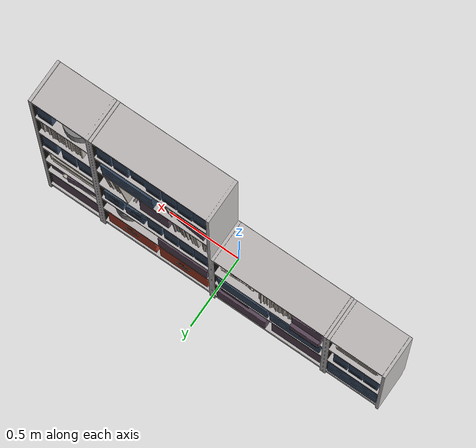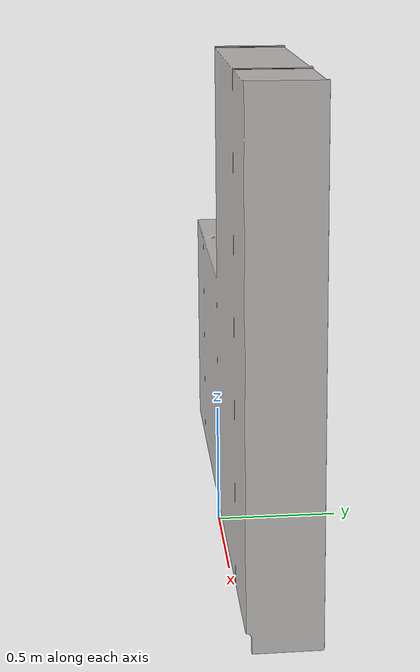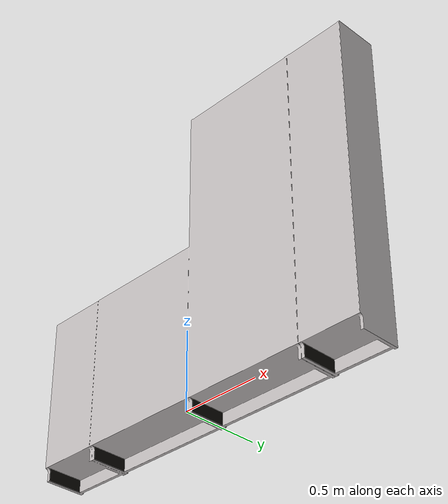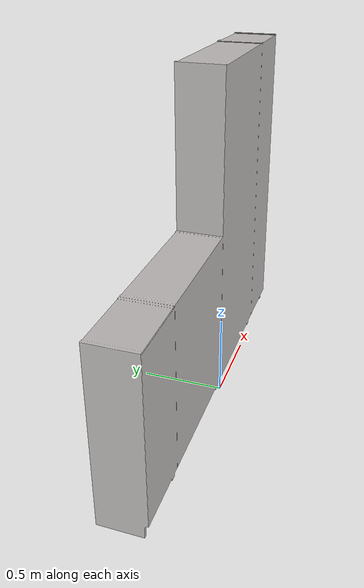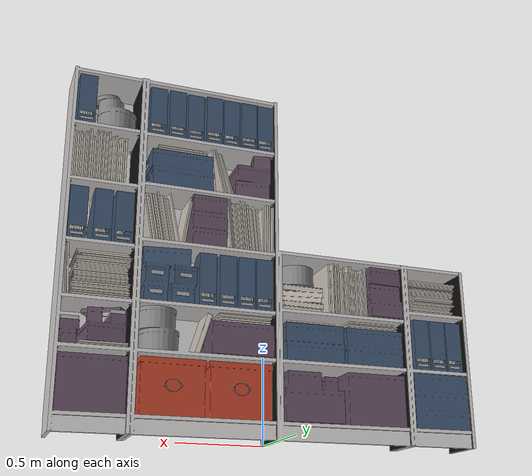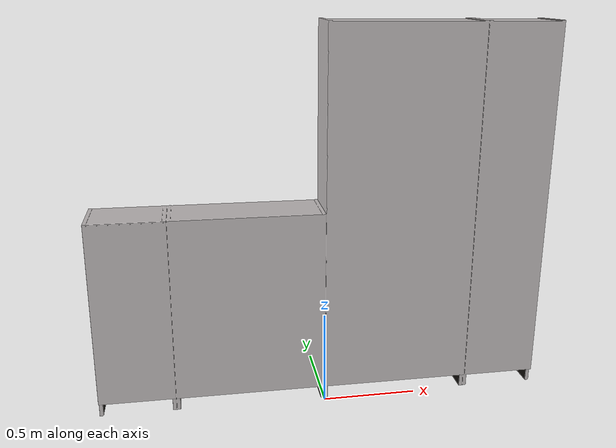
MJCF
<mujoco model="bookshelf">
  <default>
    <default class="visual">
      <geom group="2" type="mesh" contype="0" conaffinity="0"/>
    </default>
    <default class="collision">
      <geom group="3" type="mesh"/>
    </default>
  </default>
  <asset>
    <texture type="2d" name="Journal21" file="Journal21.png"/>
    <material name="Material_#100.003" texture="Journal21" specular="1.0" shininess="0.5"/>
    <texture type="2d" name="Journal42" file="Journal42.png"/>
    <material name="Material_#101.003" texture="Journal42" specular="1.0" shininess="0.5"/>
    <texture type="2d" name="Journal43" file="Journal43.png"/>
    <material name="Material_#102.003" texture="Journal43" specular="1.0" shininess="0.5"/>
    <texture type="2d" name="Journal7" file="Journal7.png"/>
    <material name="Material_#103.003" texture="Journal7" specular="1.0" shininess="0.5"/>
    <texture type="2d" name="Journal8" file="Journal8.png"/>
    <material name="Material_#104.003" texture="Journal8" specular="1.0" shininess="0.5"/>
    <texture type="2d" name="Journal44" file="Journal44.png"/>
    <material name="Material_#105.003" texture="Journal44" specular="1.0" shininess="0.5"/>
    <texture type="2d" name="Journal20" file="Journal20.png"/>
    <material name="Material_#106.003" texture="Journal20" specular="1.0" shininess="0.5"/>
    <material name="Material_#154.003" specular="1.0" shininess="0.5" rgba="0.760698 0.741291 0.741291 1.000000"/>
    <material name="Material_#155.003" specular="1.0" shininess="0.5" rgba="0.047059 0.039216 0.027451 1.000000"/>
    <material name="Material_#157.003" specular="1.0" shininess="0.5" rgba="0.152941 0.152941 0.152941 1.000000"/>
    <material name="Material_#180.003" rgba="0.67 0.233 0.145 1.000000"/>
    <material name="Material_#182.003" specular="1.0" shininess="0.5" rgba="0.098039 0.098039 0.098039 1.000000"/>
    <material name="Material_#183.003" specular="1.0" shininess="0.5" rgba="0.929412 0.898039 0.827451 1.000000"/>
    <material name="Material_#25.003" specular="1.0" shininess="0.5" rgba="0.500000 0.500000 0.500000 1.000000"/>
    <texture type="2d" name="Journal15" file="Journal15.png"/>
    <material name="Material_#26.003" texture="Journal15" specular="1.0" shininess="0.5"/>
    <material name="Material_#27.003" texture="Journal2" specular="1.0" shininess="0.5"/>
    <texture type="2d" name="Journal30" file="Journal30.png"/>
    <material name="Material_#28.003" texture="Journal30" specular="1.0" shininess="0.5"/>
    <texture type="2d" name="Journal10" file="Journal10.png"/>
    <material name="Material_#30.003" texture="Journal10" specular="1.0" shininess="0.5"/>
    <texture type="2d" name="Journal11" file="Journal11.png"/>
    <material name="Material_#31.003" texture="Journal11" specular="1.0" shininess="0.5"/>
    <texture type="2d" name="Journal27" file="Journal27.png"/>
    <material name="Material_#32.003" texture="Journal27" specular="1.0" shininess="0.5"/>
    <texture type="2d" name="Journal28" file="Journal28.png"/>
    <material name="Material_#33.003" texture="Journal28" specular="1.0" shininess="0.5"/>
    <material name="Material_#57.003" rgba="0.355 0.276 0.350 1.000000"/>
    <material name="Material_#58.003" rgba="0.6 0.6 0.6 1.000000"/>
    <material name="Material_#69.003" rgba="0.22 0.296 0.393 1.000000"/>
    <material name="Material_#70.003" rgba="0.588000 0.588000 0.588000 1.000000"/>
    <texture type="2d" name="Journal25" file="Journal25.png"/>
    <material name="Material_#72.003" texture="Journal25" specular="1.0" shininess="0.5"/>
    <texture type="2d" name="Journal41" file="Journal41.png"/>
    <material name="Material_#73.003" texture="Journal41" specular="1.0" shininess="0.5"/>
    <texture type="2d" name="Journal40" file="Journal40.png"/>
    <material name="Material_#74.003" texture="Journal40" specular="1.0" shininess="0.5"/>
    <texture type="2d" name="Journal19" file="Journal19.png"/>
    <material name="Material_#75.003" texture="Journal19" specular="1.0" shininess="0.5"/>
    <texture type="2d" name="Journal4" file="Journal4.png"/>
    <material name="Material_#76.003" texture="Journal4" specular="1.0" shininess="0.5"/>
    <texture type="2d" name="Journal9" file="Journal9.png"/>
    <material name="Material_#77.003" texture="Journal9" specular="1.0" shininess="0.5"/>
    <texture type="2d" name="Journal2" file="Journal2.png"/>
    <material name="Material_#78.003" texture="Journal2" specular="1.0" shininess="0.5"/>
    <texture type="2d" name="Forbes Russia 2014-08-12" file="Forbes Russia 2014-08-12.png"/>
    <material name="Material_#79.003" texture="Forbes Russia 2014-08-12" specular="1.0" shininess="0.5"/>
    <texture type="2d" name="Journal32" file="Journal32.png"/>
    <material name="Material_#80.003" texture="Journal32" specular="1.0" shininess="0.5"/>
    <texture type="2d" name="Journal33" file="Journal33.png"/>
    <material name="Material_#81.003" texture="Journal33" specular="1.0" shininess="0.5"/>
    <texture type="2d" name="Electronic House 2013 Summer-12" file="Electronic House 2013 Summer-12.png"/>
    <material name="Material_#82.003" texture="Electronic House 2013 Summer-12" specular="1.0" shininess="0.5"/>
    <texture type="2d" name="Journal14" file="Journal14.png"/>
    <material name="Material_#83.003" texture="Journal14" specular="1.0" shininess="0.5"/>
    <texture type="2d" name="Journal13" file="Journal13.png"/>
    <material name="Material_#84.003" texture="Journal13" specular="1.0" shininess="0.5"/>
    <material name="Material_#85.003" texture="Journal1" specular="1.0" shininess="0.5"/>
    <texture type="2d" name="Journal24" file="Journal24.png"/>
    <material name="Material_#86.003" texture="Journal24" specular="1.0" shininess="0.5"/>
    <texture type="2d" name="Journal12" file="Journal12.png"/>
    <material name="Material_#87.003" texture="Journal12" specular="1.0" shininess="0.5"/>
    <texture type="2d" name="Journal6" file="Journal6.png"/>
    <material name="Material_#88.003" texture="Journal6" specular="1.0" shininess="0.5"/>
    <texture type="2d" name="Journal5" file="Journal5.png"/>
    <material name="Material_#89.003" texture="Journal5" specular="1.0" shininess="0.5"/>
    <material name="Material_#90.003" texture="Journal3" specular="1.0" shininess="0.5"/>
    <texture type="2d" name="Journal31" file="Journal31.png"/>
    <material name="Material_#91.003" texture="Journal31" specular="1.0" shininess="0.5"/>
    <texture type="2d" name="Journal1" file="Journal1.png"/>
    <material name="Material_#92.003" texture="Journal1" specular="1.0" shininess="0.5"/>
    <texture type="2d" name="Journal16" file="Journal16.png"/>
    <material name="Material_#93.003" texture="Journal16" specular="1.0" shininess="0.5"/>
    <texture type="2d" name="Journal29" file="Journal29.png"/>
    <material name="Material_#94.003" texture="Journal29" specular="1.0" shininess="0.5"/>
    <texture type="2d" name="Journal3" file="Journal3.png"/>
    <material name="Material_#95.003" texture="Journal3" specular="1.0" shininess="0.5"/>
    <texture type="2d" name="Journal17" file="Journal17.png"/>
    <material name="Material_#96.003" texture="Journal17" specular="1.0" shininess="0.5"/>
    <texture type="2d" name="Journal22" file="Journal22.png"/>
    <material name="Material_#98.003" texture="Journal22" specular="1.0" shininess="0.5"/>
    <texture type="2d" name="Journal26" file="Journal26.png"/>
    <material name="Material_#99.003" texture="Journal26" specular="1.0" shininess="0.5"/>
    <mesh file="bookshelf_1.obj"/>
    <mesh file="bookshelf_2.obj"/>
    <mesh file="bookshelf_3.obj"/>
    <mesh file="bookshelf_4.obj"/>
    <mesh file="bookshelf_5.obj"/>
    <mesh file="bookshelf_6.obj"/>
    <mesh file="bookshelf_7.obj"/>
    <mesh file="bookshelf_8.obj"/>
    <mesh file="bookshelf_9.obj"/>
    <mesh file="bookshelf_10.obj"/>
    <mesh file="bookshelf_11.obj"/>
    <mesh file="bookshelf_12.obj"/>
    <mesh file="bookshelf_13.obj"/>
    <mesh file="bookshelf_14.obj"/>
    <mesh file="bookshelf_15.obj"/>
    <mesh file="bookshelf_16.obj"/>
    <mesh file="bookshelf_17.obj"/>
    <mesh file="bookshelf_18.obj"/>
    <mesh file="bookshelf_19.obj"/>
    <mesh file="bookshelf_20.obj"/>
    <mesh file="bookshelf_21.obj"/>
    <mesh file="bookshelf_22.obj"/>
    <mesh file="bookshelf_23.obj"/>
    <mesh file="bookshelf_24.obj"/>
    <mesh file="bookshelf_25.obj"/>
    <mesh file="bookshelf_26.obj"/>
    <mesh file="bookshelf_27.obj"/>
    <mesh file="bookshelf_28.obj"/>
    <mesh file="bookshelf_29.obj"/>
    <mesh file="bookshelf_30.obj"/>
    <mesh file="bookshelf_31.obj"/>
    <mesh file="bookshelf_32.obj"/>
    <mesh file="bookshelf_33.obj"/>
    <mesh file="bookshelf_34.obj"/>
    <mesh file="bookshelf_35.obj"/>
    <mesh file="bookshelf_36.obj"/>
    <mesh file="bookshelf_37.obj"/>
    <mesh file="bookshelf_38.obj"/>
    <mesh file="bookshelf_39.obj"/>
    <mesh file="bookshelf_40.obj"/>
    <mesh file="bookshelf_41.obj"/>
    <mesh file="bookshelf_42.obj"/>
    <mesh file="bookshelf_43.obj"/>
    <mesh file="bookshelf_44.obj"/>
    <mesh file="bookshelf_45.obj"/>
    <mesh file="bookshelf_46.obj"/>
    <mesh file="bookshelf_47.obj"/>
    <mesh file="bookshelf_48.obj"/>
    <mesh file="bookshelf_49.obj"/>
    <mesh file="bookshelf_50.obj"/>
    <mesh file="bookshelf_51.obj"/>
  </asset>
  <worldbody>
    <body name="bookshelf">
      <geom mesh="bookshelf_1" material="Material_#182.003" class="visual"/>
      <geom mesh="bookshelf_2" material="Material_#180.003" class="visual"/>
      <geom mesh="bookshelf_3" material="Material_#157.003" class="visual"/>
      <geom mesh="bookshelf_4" material="Material_#155.003" class="visual"/>
      <geom mesh="bookshelf_5" material="Material_#154.003" class="visual"/>
      <geom mesh="bookshelf_6" material="Material_#25.003" class="visual"/>
      <geom mesh="bookshelf_7" material="Material_#106.003" class="visual"/>
      <geom mesh="bookshelf_8" material="Material_#30.003" class="visual"/>
      <geom mesh="bookshelf_9" material="Material_#28.003" class="visual"/>
      <geom mesh="bookshelf_10" material="Material_#27.003" class="visual"/>
      <geom mesh="bookshelf_11" material="Material_#26.003" class="visual"/>
      <geom mesh="bookshelf_12" material="Material_#105.003" class="visual"/>
      <geom mesh="bookshelf_13" material="Material_#104.003" class="visual"/>
      <geom mesh="bookshelf_14" material="Material_#103.003" class="visual"/>
      <geom mesh="bookshelf_15" material="Material_#102.003" class="visual"/>
      <geom mesh="bookshelf_16" material="Material_#101.003" class="visual"/>
      <geom mesh="bookshelf_17" material="Material_#100.003" class="visual"/>
      <geom mesh="bookshelf_18" material="Material_#99.003" class="visual"/>
      <geom mesh="bookshelf_19" material="Material_#98.003" class="visual"/>
      <geom mesh="bookshelf_20" material="Material_#32.003" class="visual"/>
      <geom mesh="bookshelf_21" material="Material_#96.003" class="visual"/>
      <geom mesh="bookshelf_22" material="Material_#95.003" class="visual"/>
      <geom mesh="bookshelf_23" material="Material_#94.003" class="visual"/>
      <geom mesh="bookshelf_24" material="Material_#93.003" class="visual"/>
      <geom mesh="bookshelf_25" material="Material_#92.003" class="visual"/>
      <geom mesh="bookshelf_26" material="Material_#91.003" class="visual"/>
      <geom mesh="bookshelf_27" material="Material_#90.003" class="visual"/>
      <geom mesh="bookshelf_28" material="Material_#89.003" class="visual"/>
      <geom mesh="bookshelf_29" material="Material_#88.003" class="visual"/>
      <geom mesh="bookshelf_30" material="Material_#31.003" class="visual"/>
      <geom mesh="bookshelf_31" material="Material_#87.003" class="visual"/>
      <geom mesh="bookshelf_32" material="Material_#86.003" class="visual"/>
      <geom mesh="bookshelf_33" material="Material_#85.003" class="visual"/>
      <geom mesh="bookshelf_34" material="Material_#84.003" class="visual"/>
      <geom mesh="bookshelf_35" material="Material_#83.003" class="visual"/>
      <geom mesh="bookshelf_36" material="Material_#82.003" class="visual"/>
      <geom mesh="bookshelf_37" material="Material_#81.003" class="visual"/>
      <geom mesh="bookshelf_38" material="Material_#80.003" class="visual"/>
      <geom mesh="bookshelf_39" material="Material_#79.003" class="visual"/>
      <geom mesh="bookshelf_40" material="Material_#33.003" class="visual"/>
      <geom mesh="bookshelf_41" material="Material_#78.003" class="visual"/>
      <geom mesh="bookshelf_42" material="Material_#77.003" class="visual"/>
      <geom mesh="bookshelf_43" material="Material_#76.003" class="visual"/>
      <geom mesh="bookshelf_44" material="Material_#75.003" class="visual"/>
      <geom mesh="bookshelf_45" material="Material_#74.003" class="visual"/>
      <geom mesh="bookshelf_46" material="Material_#73.003" class="visual"/>
      <geom mesh="bookshelf_47" material="Material_#72.003" class="visual"/>
      <geom mesh="bookshelf_48" material="Material_#70.003" class="visual"/>
      <geom mesh="bookshelf_49" material="Material_#58.003" class="visual"/>
      <geom mesh="bookshelf_50" material="Material_#57.003" class="visual"/>
      <geom mesh="bookshelf_51" material="Material_#69.003" class="visual"/>
    </body>
  </worldbody>
</mujoco>
